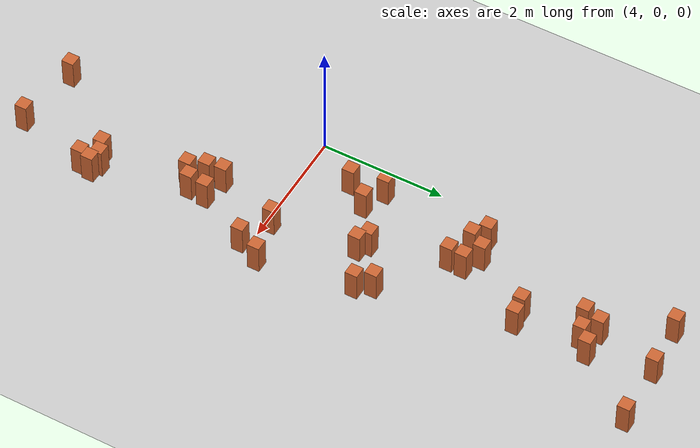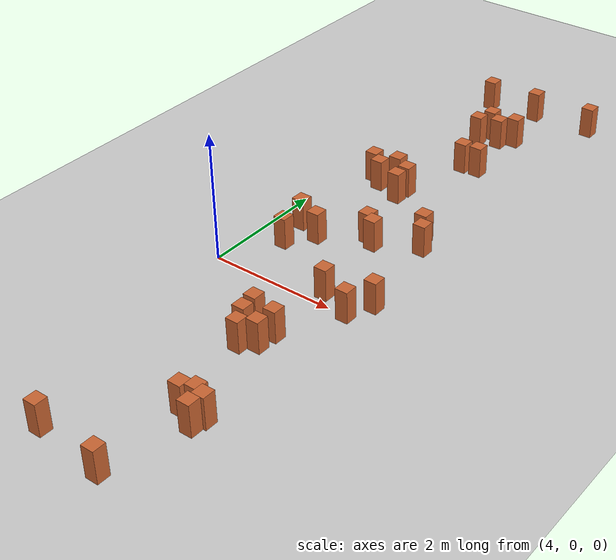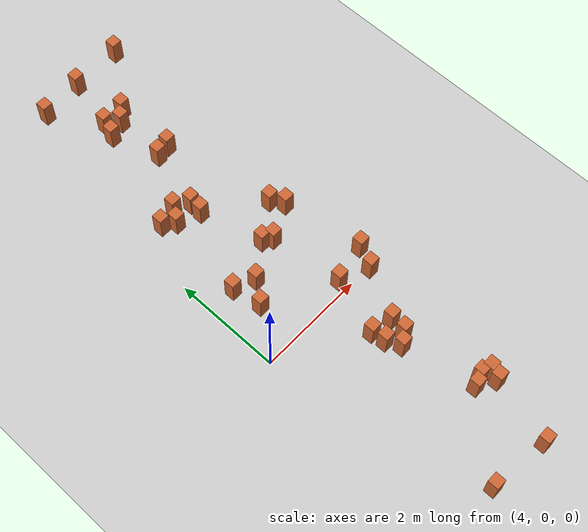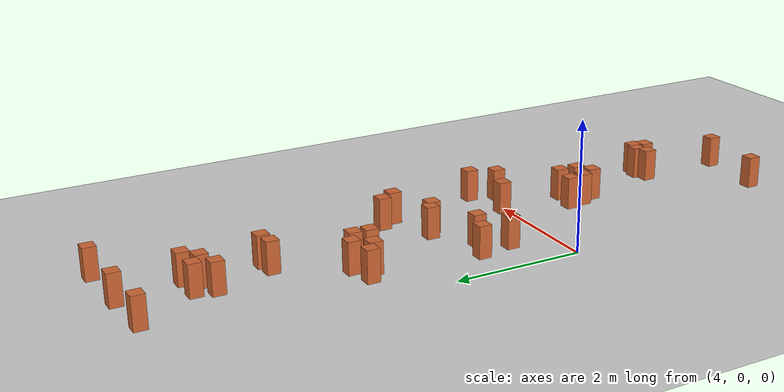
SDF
<sdf version="1.9">
 <world name="default">
  <model name="ground_plane">
   <static>true</static>
   <link name="link">
    <collision name="collision">
     <geometry><plane><normal>0 0 1</normal><size>100 100</size></plane></geometry>
     <surface><friction><ode><mu>100</mu><mu2>50</mu2></ode></friction></surface>
    </collision>
    <visual name="visual">
     <cast_shadows>false</cast_shadows>
     <geometry><plane><normal>0 0 1</normal><size>100 100</size></plane></geometry>
     <material>
      <ambient>0.6 0.6 0.6 1</ambient>
      <diffuse>0.8 0.8 0.8 1</diffuse>
      <specular>0.1 0.1 0.1 1</specular>
     </material>
    </visual>
    <inertial>
     <mass>1</mass>
     <inertia><ixx>1</ixx><ixy>0</ixy><ixz>0</ixz><iyy>1</iyy><iyz>0</iyz><izz>1</izz></inertia>
    </inertial>
   </link>
  </model>
  <model name="wood_cube_10cm_clone_0_clone_4_21">
   <link name="link">
    <pose>0 0 0.05 0 -0 0</pose>
    <inertial>
     <mass>0.51670000000000005</mass>
     <inertia>
      <ixx>0.00086116700000000003</ixx>
      <ixy>0</ixy>
      <ixz>0</ixz>
      <iyy>0.00086116700000000003</iyy>
      <iyz>0</iyz>
      <izz>0.00086116700000000003</izz>
     </inertia>
    </inertial>
    <collision name="collision">
     <geometry><box><size>0.2 0.2 0.5</size></box></geometry>
     <surface>
      <contact>
       <poissons_ratio>0.34699999999999998</poissons_ratio>
       <elastic_modulus>8800000000</elastic_modulus>
       <ode><kp>100000</kp><kd>100</kd><max_vel>100</max_vel><min_depth>0.001</min_depth></ode>
      </contact>
      <friction>
       <torsional>
        <coefficient>1</coefficient>
        <use_patch_radius>false</use_patch_radius>
        <surface_radius>0.01</surface_radius>
       </torsional>
      </friction>
     </surface>
    </collision>
    <visual name="visual">
     <geometry><box><size>0.2 0.2 0.5</size></box></geometry>
     <material>
      <ambient>0.6 0.3 0.1 1</ambient>
      <diffuse>0.8 0.4 0.2 1</diffuse>
      <specular>0.1 0.1 0.1 1</specular>
     </material>
    </visual>
   </link>
   <pose>4.4812 1.31542 0.249999 -0 -0 -0</pose>
   <static>false</static>
  </model>
  <model name="wood_cube_10cm_clone_0_clone_4_23">
   <link name="link">
    <pose>0 0 0.05 0 -0 0</pose>
    <inertial>
     <mass>0.51670000000000005</mass>
     <inertia>
      <ixx>0.00086116700000000003</ixx>
      <ixy>0</ixy>
      <ixz>0</ixz>
      <iyy>0.00086116700000000003</iyy>
      <iyz>0</iyz>
      <izz>0.00086116700000000003</izz>
     </inertia>
    </inertial>
    <collision name="collision">
     <geometry><box><size>0.2 0.2 0.5</size></box></geometry>
     <surface>
      <contact>
       <poissons_ratio>0.34699999999999998</poissons_ratio>
       <elastic_modulus>8800000000</elastic_modulus>
       <ode><kp>100000</kp><kd>100</kd><max_vel>100</max_vel><min_depth>0.001</min_depth></ode>
      </contact>
      <friction>
       <torsional>
        <coefficient>1</coefficient>
        <use_patch_radius>false</use_patch_radius>
        <surface_radius>0.01</surface_radius>
       </torsional>
      </friction>
     </surface>
    </collision>
    <visual name="visual">
     <geometry><box><size>0.2 0.2 0.5</size></box></geometry>
     <material>
      <ambient>0.6 0.3 0.1 1</ambient>
      <diffuse>0.8 0.4 0.2 1</diffuse>
      <specular>0.1 0.1 0.1 1</specular>
     </material>
    </visual>
   </link>
   <pose>4.5809 0.779702 0.249999 -0 -0 -0</pose>
   <static>false</static>
  </model>
  <model name="wood_cube_10cm_clone_0_clone_4_24">
   <link name="link">
    <pose>0 0 0.05 0 -0 0</pose>
    <inertial>
     <mass>0.51670000000000005</mass>
     <inertia>
      <ixx>0.00086116700000000003</ixx>
      <ixy>0</ixy>
      <ixz>0</ixz>
      <iyy>0.00086116700000000003</iyy>
      <iyz>0</iyz>
      <izz>0.00086116700000000003</izz>
     </inertia>
    </inertial>
    <collision name="collision">
     <geometry><box><size>0.2 0.2 0.5</size></box></geometry>
     <surface>
      <contact>
       <poissons_ratio>0.34699999999999998</poissons_ratio>
       <elastic_modulus>8800000000</elastic_modulus>
       <ode><kp>100000</kp><kd>100</kd><max_vel>100</max_vel><min_depth>0.001</min_depth></ode>
      </contact>
      <friction>
       <torsional>
        <coefficient>1</coefficient>
        <use_patch_radius>false</use_patch_radius>
        <surface_radius>0.01</surface_radius>
       </torsional>
      </friction>
     </surface>
    </collision>
    <visual name="visual">
     <geometry><box><size>0.2 0.2 0.5</size></box></geometry>
     <material>
      <ambient>0.6 0.3 0.1 1</ambient>
      <diffuse>0.8 0.4 0.2 1</diffuse>
      <specular>0.1 0.1 0.1 1</specular>
     </material>
    </visual>
   </link>
   <pose>4.87541 1.16273 0.249999 -0 -0 -0</pose>
   <static>false</static>
  </model>
  <model name="wood_cube_10cm_clone_0_clone_4_30">
   <link name="link">
    <pose>0 0 0.05 0 -0 0</pose>
    <inertial>
     <mass>0.51670000000000005</mass>
     <inertia>
      <ixx>0.00086116700000000003</ixx>
      <ixy>0</ixy>
      <ixz>0</ixz>
      <iyy>0.00086116700000000003</iyy>
      <iyz>0</iyz>
      <izz>0.00086116700000000003</izz>
     </inertia>
    </inertial>
    <collision name="collision">
     <geometry><box><size>0.2 0.2 0.5</size></box></geometry>
     <surface>
      <contact>
       <poissons_ratio>0.34699999999999998</poissons_ratio>
       <elastic_modulus>8800000000</elastic_modulus>
       <ode><kp>100000</kp><kd>100</kd><max_vel>100</max_vel><min_depth>0.001</min_depth></ode>
      </contact>
      <friction>
       <torsional>
        <coefficient>1</coefficient>
        <use_patch_radius>false</use_patch_radius>
        <surface_radius>0.01</surface_radius>
       </torsional>
      </friction>
     </surface>
    </collision>
    <visual name="visual">
     <geometry><box><size>0.2 0.2 0.5</size></box></geometry>
     <material>
      <ambient>0.6 0.3 0.1 1</ambient>
      <diffuse>0.8 0.4 0.2 1</diffuse>
      <specular>0.1 0.1 0.1 1</specular>
     </material>
    </visual>
   </link>
   <pose>5.50901 -1.15149 0.249999 -0 -0 -0</pose>
   <static>false</static>
  </model>
  <model name="wood_cube_10cm_clone_0_clone_4_31">
   <link name="link">
    <pose>0 0 0.05 0 -0 0</pose>
    <inertial>
     <mass>0.51670000000000005</mass>
     <inertia>
      <ixx>0.00086116700000000003</ixx>
      <ixy>0</ixy>
      <ixz>0</ixz>
      <iyy>0.00086116700000000003</iyy>
      <iyz>0</iyz>
      <izz>0.00086116700000000003</izz>
     </inertia>
    </inertial>
    <collision name="collision">
     <geometry><box><size>0.2 0.2 0.5</size></box></geometry>
     <surface>
      <contact>
       <poissons_ratio>0.34699999999999998</poissons_ratio>
       <elastic_modulus>8800000000</elastic_modulus>
       <ode><kp>100000</kp><kd>100</kd><max_vel>100</max_vel><min_depth>0.001</min_depth></ode>
      </contact>
      <friction>
       <torsional>
        <coefficient>1</coefficient>
        <use_patch_radius>false</use_patch_radius>
        <surface_radius>0.01</surface_radius>
       </torsional>
      </friction>
     </surface>
    </collision>
    <visual name="visual">
     <geometry><box><size>0.2 0.2 0.5</size></box></geometry>
     <material>
      <ambient>0.6 0.3 0.1 1</ambient>
      <diffuse>0.8 0.4 0.2 1</diffuse>
      <specular>0.1 0.1 0.1 1</specular>
     </material>
    </visual>
   </link>
   <pose>5.84695 -1.26136 0.249999 -0 -0 -0</pose>
   <static>false</static>
  </model>
  <model name="wood_cube_10cm_clone_0_clone_4_32">
   <link name="link">
    <pose>0 0 0.05 0 -0 0</pose>
    <inertial>
     <mass>0.51670000000000005</mass>
     <inertia>
      <ixx>0.00086116700000000003</ixx>
      <ixy>0</ixy>
      <ixz>0</ixz>
      <iyy>0.00086116700000000003</iyy>
      <iyz>0</iyz>
      <izz>0.00086116700000000003</izz>
     </inertia>
    </inertial>
    <collision name="collision">
     <geometry><box><size>0.2 0.2 0.5</size></box></geometry>
     <surface>
      <contact>
       <poissons_ratio>0.34699999999999998</poissons_ratio>
       <elastic_modulus>8800000000</elastic_modulus>
       <ode><kp>100000</kp><kd>100</kd><max_vel>100</max_vel><min_depth>0.001</min_depth></ode>
      </contact>
      <friction>
       <torsional>
        <coefficient>1</coefficient>
        <use_patch_radius>false</use_patch_radius>
        <surface_radius>0.01</surface_radius>
       </torsional>
      </friction>
     </surface>
    </collision>
    <visual name="visual">
     <geometry><box><size>0.2 0.2 0.5</size></box></geometry>
     <material>
      <ambient>0.6 0.3 0.1 1</ambient>
      <diffuse>0.8 0.4 0.2 1</diffuse>
      <specular>0.1 0.1 0.1 1</specular>
     </material>
    </visual>
   </link>
   <pose>5.63739 -1.4099 0.249999 -0 -0 -0</pose>
   <static>false</static>
  </model>
  <model name="wood_cube_10cm_clone_0_clone_4_33">
   <link name="link">
    <pose>0 0 0.05 0 -0 0</pose>
    <inertial>
     <mass>0.51670000000000005</mass>
     <inertia>
      <ixx>0.00086116700000000003</ixx>
      <ixy>0</ixy>
      <ixz>0</ixz>
      <iyy>0.00086116700000000003</iyy>
      <iyz>0</iyz>
      <izz>0.00086116700000000003</izz>
     </inertia>
    </inertial>
    <collision name="collision">
     <geometry><box><size>0.2 0.2 0.5</size></box></geometry>
     <surface>
      <contact>
       <poissons_ratio>0.34699999999999998</poissons_ratio>
       <elastic_modulus>8800000000</elastic_modulus>
       <ode><kp>100000</kp><kd>100</kd><max_vel>100</max_vel><min_depth>0.001</min_depth></ode>
      </contact>
      <friction>
       <torsional>
        <coefficient>1</coefficient>
        <use_patch_radius>false</use_patch_radius>
        <surface_radius>0.01</surface_radius>
       </torsional>
      </friction>
     </surface>
    </collision>
    <visual name="visual">
     <geometry><box><size>0.2 0.2 0.5</size></box></geometry>
     <material>
      <ambient>0.6 0.3 0.1 1</ambient>
      <diffuse>0.8 0.4 0.2 1</diffuse>
      <specular>0.1 0.1 0.1 1</specular>
     </material>
    </visual>
   </link>
   <pose>5.87547 -0.966494 0.249999 -0 -0 -0</pose>
   <static>false</static>
  </model>
  <model name="wood_cube_10cm_clone_0_clone_4_34">
   <link name="link">
    <pose>0 0 0.05 0 -0 0</pose>
    <inertial>
     <mass>0.51670000000000005</mass>
     <inertia>
      <ixx>0.00086116700000000003</ixx>
      <ixy>0</ixy>
      <ixz>0</ixz>
      <iyy>0.00086116700000000003</iyy>
      <iyz>0</iyz>
      <izz>0.00086116700000000003</izz>
     </inertia>
    </inertial>
    <collision name="collision">
     <geometry><box><size>0.2 0.2 0.5</size></box></geometry>
     <surface>
      <contact>
       <poissons_ratio>0.34699999999999998</poissons_ratio>
       <elastic_modulus>8800000000</elastic_modulus>
       <ode><kp>100000</kp><kd>100</kd><max_vel>100</max_vel><min_depth>0.001</min_depth></ode>
      </contact>
      <friction>
       <torsional>
        <coefficient>1</coefficient>
        <use_patch_radius>false</use_patch_radius>
        <surface_radius>0.01</surface_radius>
       </torsional>
      </friction>
     </surface>
    </collision>
    <visual name="visual">
     <geometry><box><size>0.2 0.2 0.5</size></box></geometry>
     <material>
      <ambient>0.6 0.3 0.1 1</ambient>
      <diffuse>0.8 0.4 0.2 1</diffuse>
      <specular>0.1 0.1 0.1 1</specular>
     </material>
    </visual>
   </link>
   <pose>5.47422 -0.888616 0.249999 -0 -0 -0</pose>
   <static>false</static>
  </model>
  <model name="wood_cube_10cm_clone_0_clone_4_41">
   <link name="link">
    <pose>0 0 0.05 0 -0 0</pose>
    <inertial>
     <mass>0.51670000000000005</mass>
     <inertia>
      <ixx>0.00086116700000000003</ixx>
      <ixy>0</ixy>
      <ixz>0</ixz>
      <iyy>0.00086116700000000003</iyy>
      <iyz>0</iyz>
      <izz>0.00086116700000000003</izz>
     </inertia>
    </inertial>
    <collision name="collision">
     <geometry><box><size>0.2 0.2 0.5</size></box></geometry>
     <surface>
      <contact>
       <poissons_ratio>0.34699999999999998</poissons_ratio>
       <elastic_modulus>8800000000</elastic_modulus>
       <ode><kp>100000</kp><kd>100</kd><max_vel>100</max_vel><min_depth>0.001</min_depth></ode>
      </contact>
      <friction>
       <torsional>
        <coefficient>1</coefficient>
        <use_patch_radius>false</use_patch_radius>
        <surface_radius>0.01</surface_radius>
       </torsional>
      </friction>
     </surface>
    </collision>
    <visual name="visual">
     <geometry><box><size>0.2 0.2 0.5</size></box></geometry>
     <material>
      <ambient>0.6 0.3 0.1 1</ambient>
      <diffuse>0.8 0.4 0.2 1</diffuse>
      <specular>0.1 0.1 0.1 1</specular>
     </material>
    </visual>
   </link>
   <pose>6.53712 0.305942 0.249999 -0 -0 -0</pose>
   <static>false</static>
  </model>
  <model name="wood_cube_10cm_clone_0_clone_4_43">
   <link name="link">
    <pose>0 0 0.05 0 -0 0</pose>
    <inertial>
     <mass>0.51670000000000005</mass>
     <inertia>
      <ixx>0.00086116700000000003</ixx>
      <ixy>0</ixy>
      <ixz>0</ixz>
      <iyy>0.00086116700000000003</iyy>
      <iyz>0</iyz>
      <izz>0.00086116700000000003</izz>
     </inertia>
    </inertial>
    <collision name="collision">
     <geometry><box><size>0.2 0.2 0.5</size></box></geometry>
     <surface>
      <contact>
       <poissons_ratio>0.34699999999999998</poissons_ratio>
       <elastic_modulus>8800000000</elastic_modulus>
       <ode><kp>100000</kp><kd>100</kd><max_vel>100</max_vel><min_depth>0.001</min_depth></ode>
      </contact>
      <friction>
       <torsional>
        <coefficient>1</coefficient>
        <use_patch_radius>false</use_patch_radius>
        <surface_radius>0.01</surface_radius>
       </torsional>
      </friction>
     </surface>
    </collision>
    <visual name="visual">
     <geometry><box><size>0.2 0.2 0.5</size></box></geometry>
     <material>
      <ambient>0.6 0.3 0.1 1</ambient>
      <diffuse>0.8 0.4 0.2 1</diffuse>
      <specular>0.1 0.1 0.1 1</specular>
     </material>
    </visual>
   </link>
   <pose>6.35474 -0.079141 0.249999 -0 -0 -0</pose>
   <static>false</static>
  </model>
  <model name="wood_cube_10cm_clone_0_clone_4_45">
   <link name="link">
    <pose>0 0 0.05 0 -0 0</pose>
    <inertial>
     <mass>0.51670000000000005</mass>
     <inertia>
      <ixx>0.00086116700000000003</ixx>
      <ixy>0</ixy>
      <ixz>0</ixz>
      <iyy>0.00086116700000000003</iyy>
      <iyz>0</iyz>
      <izz>0.00086116700000000003</izz>
     </inertia>
    </inertial>
    <collision name="collision">
     <geometry><box><size>0.2 0.2 0.5</size></box></geometry>
     <surface>
      <contact>
       <poissons_ratio>0.34699999999999998</poissons_ratio>
       <elastic_modulus>8800000000</elastic_modulus>
       <ode><kp>100000</kp><kd>100</kd><max_vel>100</max_vel><min_depth>0.001</min_depth></ode>
      </contact>
      <friction>
       <torsional>
        <coefficient>1</coefficient>
        <use_patch_radius>false</use_patch_radius>
        <surface_radius>0.01</surface_radius>
       </torsional>
      </friction>
     </surface>
    </collision>
    <visual name="visual">
     <geometry><box><size>0.2 0.2 0.5</size></box></geometry>
     <material>
      <ambient>0.6 0.3 0.1 1</ambient>
      <diffuse>0.8 0.4 0.2 1</diffuse>
      <specular>0.1 0.1 0.1 1</specular>
     </material>
    </visual>
   </link>
   <pose>5.82403 0.142576 0.249999 -0 -0 -0</pose>
   <static>false</static>
  </model>
  <model name="wood_cube_10cm_clone_0_clone_4_57">
   <link name="link">
    <pose>0 0 0.05 0 -0 0</pose>
    <inertial>
     <mass>0.51670000000000005</mass>
     <inertia>
      <ixx>0.00086116700000000003</ixx>
      <ixy>0</ixy>
      <ixz>0</ixz>
      <iyy>0.00086116700000000003</iyy>
      <iyz>0</iyz>
      <izz>0.00086116700000000003</izz>
     </inertia>
    </inertial>
    <collision name="collision">
     <geometry><box><size>0.2 0.2 0.5</size></box></geometry>
     <surface>
      <contact>
       <poissons_ratio>0.34699999999999998</poissons_ratio>
       <elastic_modulus>8800000000</elastic_modulus>
       <ode><kp>100000</kp><kd>100</kd><max_vel>100</max_vel><min_depth>0.001</min_depth></ode>
      </contact>
      <friction>
       <torsional>
        <coefficient>1</coefficient>
        <use_patch_radius>false</use_patch_radius>
        <surface_radius>0.01</surface_radius>
       </torsional>
      </friction>
     </surface>
    </collision>
    <visual name="visual">
     <geometry><box><size>0.2 0.2 0.5</size></box></geometry>
     <material>
      <ambient>0.6 0.3 0.1 1</ambient>
      <diffuse>0.8 0.4 0.2 1</diffuse>
      <specular>0.1 0.1 0.1 1</specular>
     </material>
    </visual>
   </link>
   <pose>4.8939 3.15957 0.249999 -0 -0 -0</pose>
   <static>false</static>
  </model>
  <model name="wood_cube_10cm_clone_0_clone_4_58">
   <link name="link">
    <pose>0 0 0.05 0 -0 0</pose>
    <inertial>
     <mass>0.51670000000000005</mass>
     <inertia>
      <ixx>0.00086116700000000003</ixx>
      <ixy>0</ixy>
      <ixz>0</ixz>
      <iyy>0.00086116700000000003</iyy>
      <iyz>0</iyz>
      <izz>0.00086116700000000003</izz>
     </inertia>
    </inertial>
    <collision name="collision">
     <geometry><box><size>0.2 0.2 0.5</size></box></geometry>
     <surface>
      <contact>
       <poissons_ratio>0.34699999999999998</poissons_ratio>
       <elastic_modulus>8800000000</elastic_modulus>
       <ode><kp>100000</kp><kd>100</kd><max_vel>100</max_vel><min_depth>0.001</min_depth></ode>
      </contact>
      <friction>
       <torsional>
        <coefficient>1</coefficient>
        <use_patch_radius>false</use_patch_radius>
        <surface_radius>0.01</surface_radius>
       </torsional>
      </friction>
     </surface>
    </collision>
    <visual name="visual">
     <geometry><box><size>0.2 0.2 0.5</size></box></geometry>
     <material>
      <ambient>0.6 0.3 0.1 1</ambient>
      <diffuse>0.8 0.4 0.2 1</diffuse>
      <specular>0.1 0.1 0.1 1</specular>
     </material>
    </visual>
   </link>
   <pose>5.1689 3.00189 0.249999 -0 -0 -0</pose>
   <static>false</static>
  </model>
  <model name="wood_cube_10cm_clone_0_clone_4_59">
   <link name="link">
    <pose>0 0 0.05 0 -0 0</pose>
    <inertial>
     <mass>0.51670000000000005</mass>
     <inertia>
      <ixx>0.00086116700000000003</ixx>
      <ixy>0</ixy>
      <ixz>0</ixz>
      <iyy>0.00086116700000000003</iyy>
      <iyz>0</iyz>
      <izz>0.00086116700000000003</izz>
     </inertia>
    </inertial>
    <collision name="collision">
     <geometry><box><size>0.2 0.2 0.5</size></box></geometry>
     <surface>
      <contact>
       <poissons_ratio>0.34699999999999998</poissons_ratio>
       <elastic_modulus>8800000000</elastic_modulus>
       <ode><kp>100000</kp><kd>100</kd><max_vel>100</max_vel><min_depth>0.001</min_depth></ode>
      </contact>
      <friction>
       <torsional>
        <coefficient>1</coefficient>
        <use_patch_radius>false</use_patch_radius>
        <surface_radius>0.01</surface_radius>
       </torsional>
      </friction>
     </surface>
    </collision>
    <visual name="visual">
     <geometry><box><size>0.2 0.2 0.5</size></box></geometry>
     <material>
      <ambient>0.6 0.3 0.1 1</ambient>
      <diffuse>0.8 0.4 0.2 1</diffuse>
      <specular>0.1 0.1 0.1 1</specular>
     </material>
    </visual>
   </link>
   <pose>4.72802 2.90469 0.249999 -0 -0 -0</pose>
   <static>false</static>
  </model>
  <model name="wood_cube_10cm_clone_0_clone_4_60">
   <link name="link">
    <pose>0 0 0.05 0 -0 0</pose>
    <inertial>
     <mass>0.51670000000000005</mass>
     <inertia>
      <ixx>0.00086116700000000003</ixx>
      <ixy>0</ixy>
      <ixz>0</ixz>
      <iyy>0.00086116700000000003</iyy>
      <iyz>0</iyz>
      <izz>0.00086116700000000003</izz>
     </inertia>
    </inertial>
    <collision name="collision">
     <geometry><box><size>0.2 0.2 0.5</size></box></geometry>
     <surface>
      <contact>
       <poissons_ratio>0.34699999999999998</poissons_ratio>
       <elastic_modulus>8800000000</elastic_modulus>
       <ode><kp>100000</kp><kd>100</kd><max_vel>100</max_vel><min_depth>0.001</min_depth></ode>
      </contact>
      <friction>
       <torsional>
        <coefficient>1</coefficient>
        <use_patch_radius>false</use_patch_radius>
        <surface_radius>0.01</surface_radius>
       </torsional>
      </friction>
     </surface>
    </collision>
    <visual name="visual">
     <geometry><box><size>0.2 0.2 0.5</size></box></geometry>
     <material>
      <ambient>0.6 0.3 0.1 1</ambient>
      <diffuse>0.8 0.4 0.2 1</diffuse>
      <specular>0.1 0.1 0.1 1</specular>
     </material>
    </visual>
   </link>
   <pose>4.51487 3.05965 0.249999 -0 -0 -0</pose>
   <static>false</static>
  </model>
  <model name="wood_cube_10cm_clone_0_clone_4_61">
   <link name="link">
    <pose>0 0 0.05 0 -0 0</pose>
    <inertial>
     <mass>0.51670000000000005</mass>
     <inertia>
      <ixx>0.00086116700000000003</ixx>
      <ixy>0</ixy>
      <ixz>0</ixz>
      <iyy>0.00086116700000000003</iyy>
      <iyz>0</iyz>
      <izz>0.00086116700000000003</izz>
     </inertia>
    </inertial>
    <collision name="collision">
     <geometry><box><size>0.2 0.2 0.5</size></box></geometry>
     <surface>
      <contact>
       <poissons_ratio>0.34699999999999998</poissons_ratio>
       <elastic_modulus>8800000000</elastic_modulus>
       <ode><kp>100000</kp><kd>100</kd><max_vel>100</max_vel><min_depth>0.001</min_depth></ode>
      </contact>
      <friction>
       <torsional>
        <coefficient>1</coefficient>
        <use_patch_radius>false</use_patch_radius>
        <surface_radius>0.01</surface_radius>
       </torsional>
      </friction>
     </surface>
    </collision>
    <visual name="visual">
     <geometry><box><size>0.2 0.2 0.5</size></box></geometry>
     <material>
      <ambient>0.6 0.3 0.1 1</ambient>
      <diffuse>0.8 0.4 0.2 1</diffuse>
      <specular>0.1 0.1 0.1 1</specular>
     </material>
    </visual>
   </link>
   <pose>5.15399 2.75338 0.249999 -0 -0 -0</pose>
   <static>false</static>
  </model>
  <model name="wood_cube_10cm_clone_0_clone_4_62">
   <link name="link">
    <pose>0 0 0.05 0 -0 0</pose>
    <inertial>
     <mass>0.51670000000000005</mass>
     <inertia>
      <ixx>0.00086116700000000003</ixx>
      <ixy>0</ixy>
      <ixz>0</ixz>
      <iyy>0.00086116700000000003</iyy>
      <iyz>0</iyz>
      <izz>0.00086116700000000003</izz>
     </inertia>
    </inertial>
    <collision name="collision">
     <geometry><box><size>0.2 0.2 0.5</size></box></geometry>
     <surface>
      <contact>
       <poissons_ratio>0.34699999999999998</poissons_ratio>
       <elastic_modulus>8800000000</elastic_modulus>
       <ode><kp>100000</kp><kd>100</kd><max_vel>100</max_vel><min_depth>0.001</min_depth></ode>
      </contact>
      <friction>
       <torsional>
        <coefficient>1</coefficient>
        <use_patch_radius>false</use_patch_radius>
        <surface_radius>0.01</surface_radius>
       </torsional>
      </friction>
     </surface>
    </collision>
    <visual name="visual">
     <geometry><box><size>0.2 0.2 0.5</size></box></geometry>
     <material>
      <ambient>0.6 0.3 0.1 1</ambient>
      <diffuse>0.8 0.4 0.2 1</diffuse>
      <specular>0.1 0.1 0.1 1</specular>
     </material>
    </visual>
   </link>
   <pose>6.13726 2.04913 0.249999 -0 -0 -0</pose>
   <static>false</static>
  </model>
  <model name="wood_cube_10cm_clone_0_clone_4_63">
   <link name="link">
    <pose>0 0 0.05 0 -0 0</pose>
    <inertial>
     <mass>0.51670000000000005</mass>
     <inertia>
      <ixx>0.00086116700000000003</ixx>
      <ixy>0</ixy>
      <ixz>0</ixz>
      <iyy>0.00086116700000000003</iyy>
      <iyz>0</iyz>
      <izz>0.00086116700000000003</izz>
     </inertia>
    </inertial>
    <collision name="collision">
     <geometry><box><size>0.2 0.2 0.5</size></box></geometry>
     <surface>
      <contact>
       <poissons_ratio>0.34699999999999998</poissons_ratio>
       <elastic_modulus>8800000000</elastic_modulus>
       <ode><kp>100000</kp><kd>100</kd><max_vel>100</max_vel><min_depth>0.001</min_depth></ode>
      </contact>
      <friction>
       <torsional>
        <coefficient>1</coefficient>
        <use_patch_radius>false</use_patch_radius>
        <surface_radius>0.01</surface_radius>
       </torsional>
      </friction>
     </surface>
    </collision>
    <visual name="visual">
     <geometry><box><size>0.2 0.2 0.5</size></box></geometry>
     <material>
      <ambient>0.6 0.3 0.1 1</ambient>
      <diffuse>0.8 0.4 0.2 1</diffuse>
      <specular>0.1 0.1 0.1 1</specular>
     </material>
    </visual>
   </link>
   <pose>6.28053 1.80427 0.249999 -0 -0 -0</pose>
   <static>false</static>
  </model>
  <model name="wood_cube_10cm_clone_0_clone_4_44_14">
   <link name="link">
    <pose>0 0 0.05 0 -0 0</pose>
    <inertial>
     <mass>0.51670000000000005</mass>
     <inertia>
      <ixx>0.00086116700000000003</ixx>
      <ixy>0</ixy>
      <ixz>0</ixz>
      <iyy>0.00086116700000000003</iyy>
      <iyz>0</iyz>
      <izz>0.00086116700000000003</izz>
     </inertia>
    </inertial>
    <collision name="collision">
     <geometry><box><size>0.2 0.2 0.5</size></box></geometry>
     <surface>
      <contact>
       <poissons_ratio>0.34699999999999998</poissons_ratio>
       <elastic_modulus>8800000000</elastic_modulus>
       <ode><kp>100000</kp><kd>100</kd><max_vel>100</max_vel><min_depth>0.001</min_depth></ode>
      </contact>
      <friction>
       <torsional>
        <coefficient>1</coefficient>
        <use_patch_radius>false</use_patch_radius>
        <surface_radius>0.01</surface_radius>
       </torsional>
      </friction>
     </surface>
    </collision>
    <visual name="visual">
     <geometry><box><size>0.2 0.2 0.5</size></box></geometry>
     <material>
      <ambient>0.6 0.3 0.1 1</ambient>
      <diffuse>0.8 0.4 0.2 1</diffuse>
      <specular>0.1 0.1 0.1 1</specular>
     </material>
    </visual>
   </link>
   <pose>4.69607 6.22577 0.249999 0 -0 0</pose>
   <static>false</static>
  </model>
  <model name="wood_cube_10cm_clone_0_clone_4_44_15">
   <link name="link">
    <pose>0 0 0.05 0 -0 0</pose>
    <inertial>
     <mass>0.51670000000000005</mass>
     <inertia>
      <ixx>0.00086116700000000003</ixx>
      <ixy>0</ixy>
      <ixz>0</ixz>
      <iyy>0.00086116700000000003</iyy>
      <iyz>0</iyz>
      <izz>0.00086116700000000003</izz>
     </inertia>
    </inertial>
    <collision name="collision">
     <geometry><box><size>0.2 0.2 0.5</size></box></geometry>
     <surface>
      <contact>
       <poissons_ratio>0.34699999999999998</poissons_ratio>
       <elastic_modulus>8800000000</elastic_modulus>
       <ode><kp>100000</kp><kd>100</kd><max_vel>100</max_vel><min_depth>0.001</min_depth></ode>
      </contact>
      <friction>
       <torsional>
        <coefficient>1</coefficient>
        <use_patch_radius>false</use_patch_radius>
        <surface_radius>0.01</surface_radius>
       </torsional>
      </friction>
     </surface>
    </collision>
    <visual name="visual">
     <geometry><box><size>0.2 0.2 0.5</size></box></geometry>
     <material>
      <ambient>0.6 0.3 0.1 1</ambient>
      <diffuse>0.8 0.4 0.2 1</diffuse>
      <specular>0.1 0.1 0.1 1</specular>
     </material>
    </visual>
   </link>
   <pose>5.51144 6.29672 0.249999 0 -0 0</pose>
   <static>false</static>
  </model>
  <model name="wood_cube_10cm_clone_0_clone_4_44_16">
   <link name="link">
    <pose>0 0 0.05 0 -0 0</pose>
    <inertial>
     <mass>0.51670000000000005</mass>
     <inertia>
      <ixx>0.00086116700000000003</ixx>
      <ixy>0</ixy>
      <ixz>0</ixz>
      <iyy>0.00086116700000000003</iyy>
      <iyz>0</iyz>
      <izz>0.00086116700000000003</izz>
     </inertia>
    </inertial>
    <collision name="collision">
     <geometry><box><size>0.2 0.2 0.5</size></box></geometry>
     <surface>
      <contact>
       <poissons_ratio>0.34699999999999998</poissons_ratio>
       <elastic_modulus>8800000000</elastic_modulus>
       <ode><kp>100000</kp><kd>100</kd><max_vel>100</max_vel><min_depth>0.001</min_depth></ode>
      </contact>
      <friction>
       <torsional>
        <coefficient>1</coefficient>
        <use_patch_radius>false</use_patch_radius>
        <surface_radius>0.01</surface_radius>
       </torsional>
      </friction>
     </surface>
    </collision>
    <visual name="visual">
     <geometry><box><size>0.2 0.2 0.5</size></box></geometry>
     <material>
      <ambient>0.6 0.3 0.1 1</ambient>
      <diffuse>0.8 0.4 0.2 1</diffuse>
      <specular>0.1 0.1 0.1 1</specular>
     </material>
    </visual>
   </link>
   <pose>6.49117 6.34398 0.249999 0 -0 0</pose>
   <static>false</static>
  </model>
  <model name="wood_cube_10cm_clone_0_clone_4_44_38">
   <link name="link">
    <pose>0 0 0.05 0 -0 0</pose>
    <inertial>
     <mass>0.51670000000000005</mass>
     <inertia>
      <ixx>0.00086116700000000003</ixx>
      <ixy>0</ixy>
      <ixz>0</ixz>
      <iyy>0.00086116700000000003</iyy>
      <iyz>0</iyz>
      <izz>0.00086116700000000003</izz>
     </inertia>
    </inertial>
    <collision name="collision">
     <geometry><box><size>0.2 0.2 0.5</size></box></geometry>
     <surface>
      <contact>
       <poissons_ratio>0.34699999999999998</poissons_ratio>
       <elastic_modulus>8800000000</elastic_modulus>
       <ode><kp>100000</kp><kd>100</kd><max_vel>100</max_vel><min_depth>0.001</min_depth></ode>
      </contact>
      <friction>
       <torsional>
        <coefficient>1</coefficient>
        <use_patch_radius>false</use_patch_radius>
        <surface_radius>0.01</surface_radius>
       </torsional>
      </friction>
     </surface>
    </collision>
    <visual name="visual">
     <geometry><box><size>0.2 0.2 0.5</size></box></geometry>
     <material>
      <ambient>0.6 0.3 0.1 1</ambient>
      <diffuse>0.8 0.4 0.2 1</diffuse>
      <specular>0.1 0.1 0.1 1</specular>
     </material>
    </visual>
   </link>
   <pose>5.91507 -4.10726 0.249999 0 -0 0</pose>
   <static>false</static>
  </model>
  <model name="wood_cube_10cm_clone_0_clone_4_44_39">
   <link name="link">
    <pose>0 0 0.05 0 -0 0</pose>
    <inertial>
     <mass>0.51670000000000005</mass>
     <inertia>
      <ixx>0.00086116700000000003</ixx>
      <ixy>0</ixy>
      <ixz>0</ixz>
      <iyy>0.00086116700000000003</iyy>
      <iyz>0</iyz>
      <izz>0.00086116700000000003</izz>
     </inertia>
    </inertial>
    <collision name="collision">
     <geometry><box><size>0.2 0.2 0.5</size></box></geometry>
     <surface>
      <contact>
       <poissons_ratio>0.34699999999999998</poissons_ratio>
       <elastic_modulus>8800000000</elastic_modulus>
       <ode><kp>100000</kp><kd>100</kd><max_vel>100</max_vel><min_depth>0.001</min_depth></ode>
      </contact>
      <friction>
       <torsional>
        <coefficient>1</coefficient>
        <use_patch_radius>false</use_patch_radius>
        <surface_radius>0.01</surface_radius>
       </torsional>
      </friction>
     </surface>
    </collision>
    <visual name="visual">
     <geometry><box><size>0.2 0.2 0.5</size></box></geometry>
     <material>
      <ambient>0.6 0.3 0.1 1</ambient>
      <diffuse>0.8 0.4 0.2 1</diffuse>
      <specular>0.1 0.1 0.1 1</specular>
     </material>
    </visual>
   </link>
   <pose>4.80397 -3.97795 0.249999 0 -0 0</pose>
   <static>false</static>
  </model>
  <model name="wood_cube_10cm_clone_0_clone_4_44_52">
   <link name="link">
    <pose>0 0 0.05 0 -0 0</pose>
    <inertial>
     <mass>0.51670000000000005</mass>
     <inertia>
      <ixx>0.00086116700000000003</ixx>
      <ixy>0</ixy>
      <ixz>0</ixz>
      <iyy>0.00086116700000000003</iyy>
      <iyz>0</iyz>
      <izz>0.00086116700000000003</izz>
     </inertia>
    </inertial>
    <collision name="collision">
     <geometry><box><size>0.2 0.2 0.5</size></box></geometry>
     <surface>
      <contact>
       <poissons_ratio>0.34699999999999998</poissons_ratio>
       <elastic_modulus>8800000000</elastic_modulus>
       <ode><kp>100000</kp><kd>100</kd><max_vel>100</max_vel><min_depth>0.001</min_depth></ode>
      </contact>
      <friction>
       <torsional>
        <coefficient>1</coefficient>
        <use_patch_radius>false</use_patch_radius>
        <surface_radius>0.01</surface_radius>
       </torsional>
      </friction>
     </surface>
    </collision>
    <visual name="visual">
     <geometry><box><size>0.2 0.2 0.5</size></box></geometry>
     <material>
      <ambient>0.6 0.3 0.1 1</ambient>
      <diffuse>0.8 0.4 0.2 1</diffuse>
      <specular>0.1 0.1 0.1 1</specular>
     </material>
    </visual>
   </link>
   <pose>5.70001 5.30835 0.25 -0 0 0.002579</pose>
   <static>false</static>
  </model>
  <model name="wood_cube_10cm_clone_0_clone_4_44_53">
   <link name="link">
    <pose>0 0 0.05 0 -0 0</pose>
    <inertial>
     <mass>0.51670000000000005</mass>
     <inertia>
      <ixx>0.00086116700000000003</ixx>
      <ixy>0</ixy>
      <ixz>0</ixz>
      <iyy>0.00086116700000000003</iyy>
      <iyz>0</iyz>
      <izz>0.00086116700000000003</izz>
     </inertia>
    </inertial>
    <collision name="collision">
     <geometry><box><size>0.2 0.2 0.5</size></box></geometry>
     <surface>
      <contact>
       <poissons_ratio>0.34699999999999998</poissons_ratio>
       <elastic_modulus>8800000000</elastic_modulus>
       <ode><kp>100000</kp><kd>100</kd><max_vel>100</max_vel><min_depth>0.001</min_depth></ode>
      </contact>
      <friction>
       <torsional>
        <coefficient>1</coefficient>
        <use_patch_radius>false</use_patch_radius>
        <surface_radius>0.01</surface_radius>
       </torsional>
      </friction>
     </surface>
    </collision>
    <visual name="visual">
     <geometry><box><size>0.2 0.2 0.5</size></box></geometry>
     <material>
      <ambient>0.6 0.3 0.1 1</ambient>
      <diffuse>0.8 0.4 0.2 1</diffuse>
      <specular>0.1 0.1 0.1 1</specular>
     </material>
    </visual>
   </link>
   <pose>5.26952 5.29508 0.249999 0 -0 0</pose>
   <static>false</static>
  </model>
  <model name="wood_cube_10cm_clone_0_clone_4_44_54">
   <link name="link">
    <pose>0 0 0.05 0 -0 0</pose>
    <inertial>
     <mass>0.51670000000000005</mass>
     <inertia>
      <ixx>0.00086116700000000003</ixx>
      <ixy>0</ixy>
      <ixz>0</ixz>
      <iyy>0.00086116700000000003</iyy>
      <iyz>0</iyz>
      <izz>0.00086116700000000003</izz>
     </inertia>
    </inertial>
    <collision name="collision">
     <geometry><box><size>0.2 0.2 0.5</size></box></geometry>
     <surface>
      <contact>
       <poissons_ratio>0.34699999999999998</poissons_ratio>
       <elastic_modulus>8800000000</elastic_modulus>
       <ode><kp>100000</kp><kd>100</kd><max_vel>100</max_vel><min_depth>0.001</min_depth></ode>
      </contact>
      <friction>
       <torsional>
        <coefficient>1</coefficient>
        <use_patch_radius>false</use_patch_radius>
        <surface_radius>0.01</surface_radius>
       </torsional>
      </friction>
     </surface>
    </collision>
    <visual name="visual">
     <geometry><box><size>0.2 0.2 0.5</size></box></geometry>
     <material>
      <ambient>0.6 0.3 0.1 1</ambient>
      <diffuse>0.8 0.4 0.2 1</diffuse>
      <specular>0.1 0.1 0.1 1</specular>
     </material>
    </visual>
   </link>
   <pose>5.50228 5.11786 0.25 0 -0 0.022563</pose>
   <static>false</static>
  </model>
  <model name="wood_cube_10cm_clone_0_clone_4_44_55">
   <link name="link">
    <pose>0 0 0.05 0 -0 0</pose>
    <inertial>
     <mass>0.51670000000000005</mass>
     <inertia>
      <ixx>0.00086116700000000003</ixx>
      <ixy>0</ixy>
      <ixz>0</ixz>
      <iyy>0.00086116700000000003</iyy>
      <iyz>0</iyz>
      <izz>0.00086116700000000003</izz>
     </inertia>
    </inertial>
    <collision name="collision">
     <geometry><box><size>0.2 0.2 0.5</size></box></geometry>
     <surface>
      <contact>
       <poissons_ratio>0.34699999999999998</poissons_ratio>
       <elastic_modulus>8800000000</elastic_modulus>
       <ode><kp>100000</kp><kd>100</kd><max_vel>100</max_vel><min_depth>0.001</min_depth></ode>
      </contact>
      <friction>
       <torsional>
        <coefficient>1</coefficient>
        <use_patch_radius>false</use_patch_radius>
        <surface_radius>0.01</surface_radius>
       </torsional>
      </friction>
     </surface>
    </collision>
    <visual name="visual">
     <geometry><box><size>0.2 0.2 0.5</size></box></geometry>
     <material>
      <ambient>0.6 0.3 0.1 1</ambient>
      <diffuse>0.8 0.4 0.2 1</diffuse>
      <specular>0.1 0.1 0.1 1</specular>
     </material>
    </visual>
   </link>
   <pose>5.18178 5.00986 0.249999 0 -0 0</pose>
   <static>false</static>
  </model>
  <model name="wood_cube_10cm_clone_0_clone_4_44_73">
   <link name="link">
    <pose>0 0 0.05 0 -0 0</pose>
    <inertial>
     <mass>0.51670000000000005</mass>
     <inertia>
      <ixx>0.00086116700000000003</ixx>
      <ixy>0</ixy>
      <ixz>0</ixz>
      <iyy>0.00086116700000000003</iyy>
      <iyz>0</iyz>
      <izz>0.00086116700000000003</izz>
     </inertia>
    </inertial>
    <collision name="collision">
     <geometry><box><size>0.2 0.2 0.5</size></box></geometry>
     <surface>
      <contact>
       <poissons_ratio>0.34699999999999998</poissons_ratio>
       <elastic_modulus>8800000000</elastic_modulus>
       <ode><kp>100000</kp><kd>100</kd><max_vel>100</max_vel><min_depth>0.001</min_depth></ode>
      </contact>
      <friction>
       <torsional>
        <coefficient>1</coefficient>
        <use_patch_radius>false</use_patch_radius>
        <surface_radius>0.01</surface_radius>
       </torsional>
      </friction>
     </surface>
    </collision>
    <visual name="visual">
     <geometry><box><size>0.2 0.2 0.5</size></box></geometry>
     <material>
      <ambient>0.6 0.3 0.1 1</ambient>
      <diffuse>0.8 0.4 0.2 1</diffuse>
      <specular>0.1 0.1 0.1 1</specular>
     </material>
    </visual>
   </link>
   <pose>6.27842 -2.71746 0.250018 0 0.000185 -0.002248</pose>
   <static>false</static>
  </model>
  <model name="wood_cube_10cm_clone_0_clone_4_44_74">
   <link name="link">
    <pose>0 0 0.05 0 -0 0</pose>
    <inertial>
     <mass>0.51670000000000005</mass>
     <inertia>
      <ixx>0.00086116700000000003</ixx>
      <ixy>0</ixy>
      <ixz>0</ixz>
      <iyy>0.00086116700000000003</iyy>
      <iyz>0</iyz>
      <izz>0.00086116700000000003</izz>
     </inertia>
    </inertial>
    <collision name="collision">
     <geometry><box><size>0.2 0.2 0.5</size></box></geometry>
     <surface>
      <contact>
       <poissons_ratio>0.34699999999999998</poissons_ratio>
       <elastic_modulus>8800000000</elastic_modulus>
       <ode><kp>100000</kp><kd>100</kd><max_vel>100</max_vel><min_depth>0.001</min_depth></ode>
      </contact>
      <friction>
       <torsional>
        <coefficient>1</coefficient>
        <use_patch_radius>false</use_patch_radius>
        <surface_radius>0.01</surface_radius>
       </torsional>
      </friction>
     </surface>
    </collision>
    <visual name="visual">
     <geometry><box><size>0.2 0.2 0.5</size></box></geometry>
     <material>
      <ambient>0.6 0.3 0.1 1</ambient>
      <diffuse>0.8 0.4 0.2 1</diffuse>
      <specular>0.1 0.1 0.1 1</specular>
     </material>
    </visual>
   </link>
   <pose>5.91084 -2.73292 0.250008 0 -7.9e-05 0.001016</pose>
   <static>false</static>
  </model>
  <model name="wood_cube_10cm_clone_0_clone_4_44_75">
   <link name="link">
    <pose>0 0 0.05 0 -0 0</pose>
    <inertial>
     <mass>0.51670000000000005</mass>
     <inertia>
      <ixx>0.00086116700000000003</ixx>
      <ixy>0</ixy>
      <ixz>0</ixz>
      <iyy>0.00086116700000000003</iyy>
      <iyz>0</iyz>
      <izz>0.00086116700000000003</izz>
     </inertia>
    </inertial>
    <collision name="collision">
     <geometry><box><size>0.2 0.2 0.5</size></box></geometry>
     <surface>
      <contact>
       <poissons_ratio>0.34699999999999998</poissons_ratio>
       <elastic_modulus>8800000000</elastic_modulus>
       <ode><kp>100000</kp><kd>100</kd><max_vel>100</max_vel><min_depth>0.001</min_depth></ode>
      </contact>
      <friction>
       <torsional>
        <coefficient>1</coefficient>
        <use_patch_radius>false</use_patch_radius>
        <surface_radius>0.01</surface_radius>
       </torsional>
      </friction>
     </surface>
    </collision>
    <visual name="visual">
     <geometry><box><size>0.2 0.2 0.5</size></box></geometry>
     <material>
      <ambient>0.6 0.3 0.1 1</ambient>
      <diffuse>0.8 0.4 0.2 1</diffuse>
      <specular>0.1 0.1 0.1 1</specular>
     </material>
    </visual>
   </link>
   <pose>6.11076 -2.6583 0.25001 -1.8e-05 -7.9e-05 0.001015</pose>
   <static>false</static>
  </model>
  <model name="wood_cube_10cm_clone_0_clone_4_44_76">
   <link name="link">
    <pose>0 0 0.05 0 -0 0</pose>
    <inertial>
     <mass>0.51670000000000005</mass>
     <inertia>
      <ixx>0.00086116700000000003</ixx>
      <ixy>0</ixy>
      <ixz>0</ixz>
      <iyy>0.00086116700000000003</iyy>
      <iyz>0</iyz>
      <izz>0.00086116700000000003</izz>
     </inertia>
    </inertial>
    <collision name="collision">
     <geometry><box><size>0.2 0.2 0.5</size></box></geometry>
     <surface>
      <contact>
       <poissons_ratio>0.34699999999999998</poissons_ratio>
       <elastic_modulus>8800000000</elastic_modulus>
       <ode><kp>100000</kp><kd>100</kd><max_vel>100</max_vel><min_depth>0.001</min_depth></ode>
      </contact>
      <friction>
       <torsional>
        <coefficient>1</coefficient>
        <use_patch_radius>false</use_patch_radius>
        <surface_radius>0.01</surface_radius>
       </torsional>
      </friction>
     </surface>
    </collision>
    <visual name="visual">
     <geometry><box><size>0.2 0.2 0.5</size></box></geometry>
     <material>
      <ambient>0.6 0.3 0.1 1</ambient>
      <diffuse>0.8 0.4 0.2 1</diffuse>
      <specular>0.1 0.1 0.1 1</specular>
     </material>
    </visual>
   </link>
   <pose>6.23228 -2.91741 0.25 1e-06 -0 -0.002215</pose>
   <static>false</static>
  </model>
  <model name="wood_cube_10cm_clone_0_clone_4_44_2_4">
   <link name="link">
    <pose>0 0 0.05 0 -0 0</pose>
    <inertial>
     <mass>0.51670000000000005</mass>
     <inertia>
      <ixx>0.00086116700000000003</ixx>
      <ixy>0</ixy>
      <ixz>0</ixz>
      <iyy>0.00086116700000000003</iyy>
      <iyz>0</iyz>
      <izz>0.00086116700000000003</izz>
     </inertia>
    </inertial>
    <collision name="collision">
     <geometry><box><size>0.2 0.2 0.5</size></box></geometry>
     <surface>
      <contact>
       <poissons_ratio>0.34699999999999998</poissons_ratio>
       <elastic_modulus>8800000000</elastic_modulus>
       <ode><kp>100000</kp><kd>100</kd><max_vel>100</max_vel><min_depth>0.001</min_depth></ode>
      </contact>
      <friction>
       <torsional>
        <coefficient>1</coefficient>
        <use_patch_radius>false</use_patch_radius>
        <surface_radius>0.01</surface_radius>
       </torsional>
      </friction>
     </surface>
    </collision>
    <visual name="visual">
     <geometry><box><size>0.2 0.2 0.5</size></box></geometry>
     <material>
      <ambient>0.6 0.3 0.1 1</ambient>
      <diffuse>0.8 0.4 0.2 1</diffuse>
      <specular>0.1 0.1 0.1 1</specular>
     </material>
    </visual>
   </link>
   <pose>5.64244 1.48889 0.250012 1e-06 0.00012 -0.018722</pose>
   <static>false</static>
  </model>
  <model name="wood_cube_10cm_clone_0_clone_4_44_2_5">
   <link name="link">
    <pose>0 0 0.05 0 -0 0</pose>
    <inertial>
     <mass>0.51670000000000005</mass>
     <inertia>
      <ixx>0.00086116700000000003</ixx>
      <ixy>0</ixy>
      <ixz>0</ixz>
      <iyy>0.00086116700000000003</iyy>
      <iyz>0</iyz>
      <izz>0.00086116700000000003</izz>
     </inertia>
    </inertial>
    <collision name="collision">
     <geometry><box><size>0.2 0.2 0.5</size></box></geometry>
     <surface>
      <contact>
       <poissons_ratio>0.34699999999999998</poissons_ratio>
       <elastic_modulus>8800000000</elastic_modulus>
       <ode><kp>100000</kp><kd>100</kd><max_vel>100</max_vel><min_depth>0.001</min_depth></ode>
      </contact>
      <friction>
       <torsional>
        <coefficient>1</coefficient>
        <use_patch_radius>false</use_patch_radius>
        <surface_radius>0.01</surface_radius>
       </torsional>
      </friction>
     </surface>
    </collision>
    <visual name="visual">
     <geometry><box><size>0.2 0.2 0.5</size></box></geometry>
     <material>
      <ambient>0.6 0.3 0.1 1</ambient>
      <diffuse>0.8 0.4 0.2 1</diffuse>
      <specular>0.1 0.1 0.1 1</specular>
     </material>
    </visual>
   </link>
   <pose>5.47701 1.59692 0.25 -0 -4e-06 -0.018015</pose>
   <static>false</static>
  </model>
  <model name="wood_cube_10cm_clone_0_clone_4_44_2_8">
   <link name="link">
    <pose>0 0 0.05 0 -0 0</pose>
    <inertial>
     <mass>0.51670000000000005</mass>
     <inertia>
      <ixx>0.00086116700000000003</ixx>
      <ixy>0</ixy>
      <ixz>0</ixz>
      <iyy>0.00086116700000000003</iyy>
      <iyz>0</iyz>
      <izz>0.00086116700000000003</izz>
     </inertia>
    </inertial>
    <collision name="collision">
     <geometry><box><size>0.2 0.2 0.5</size></box></geometry>
     <surface>
      <contact>
       <poissons_ratio>0.34699999999999998</poissons_ratio>
       <elastic_modulus>8800000000</elastic_modulus>
       <ode><kp>100000</kp><kd>100</kd><max_vel>100</max_vel><min_depth>0.001</min_depth></ode>
      </contact>
      <friction>
       <torsional>
        <coefficient>1</coefficient>
        <use_patch_radius>false</use_patch_radius>
        <surface_radius>0.01</surface_radius>
       </torsional>
      </friction>
     </surface>
    </collision>
    <visual name="visual">
     <geometry><box><size>0.2 0.2 0.5</size></box></geometry>
     <material>
      <ambient>0.6 0.3 0.1 1</ambient>
      <diffuse>0.8 0.4 0.2 1</diffuse>
      <specular>0.1 0.1 0.1 1</specular>
     </material>
    </visual>
   </link>
   <pose>5.72055 4.15114 0.249999 0 -0 0</pose>
   <static>false</static>
  </model>
  <model name="wood_cube_10cm_clone_0_clone_4_44_2_9">
   <link name="link">
    <pose>0 0 0.05 0 -0 0</pose>
    <inertial>
     <mass>0.51670000000000005</mass>
     <inertia>
      <ixx>0.00086116700000000003</ixx>
      <ixy>0</ixy>
      <ixz>0</ixz>
      <iyy>0.00086116700000000003</iyy>
      <iyz>0</iyz>
      <izz>0.00086116700000000003</izz>
     </inertia>
    </inertial>
    <collision name="collision">
     <geometry><box><size>0.2 0.2 0.5</size></box></geometry>
     <surface>
      <contact>
       <poissons_ratio>0.34699999999999998</poissons_ratio>
       <elastic_modulus>8800000000</elastic_modulus>
       <ode><kp>100000</kp><kd>100</kd><max_vel>100</max_vel><min_depth>0.001</min_depth></ode>
      </contact>
      <friction>
       <torsional>
        <coefficient>1</coefficient>
        <use_patch_radius>false</use_patch_radius>
        <surface_radius>0.01</surface_radius>
       </torsional>
      </friction>
     </surface>
    </collision>
    <visual name="visual">
     <geometry><box><size>0.2 0.2 0.5</size></box></geometry>
     <material>
      <ambient>0.6 0.3 0.1 1</ambient>
      <diffuse>0.8 0.4 0.2 1</diffuse>
      <specular>0.1 0.1 0.1 1</specular>
     </material>
    </visual>
   </link>
   <pose>5.46203 4.11882 0.249999 0 -0 0</pose>
   <static>false</static>
  </model>
 </world>
</sdf>
